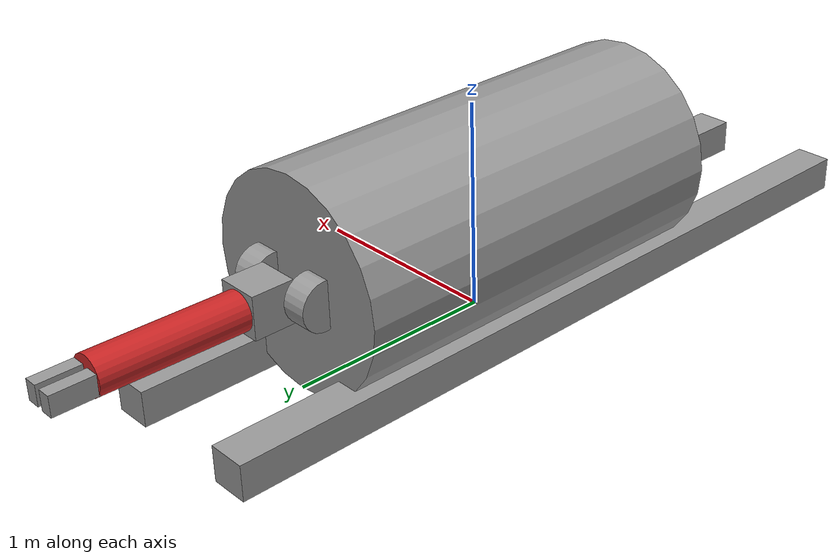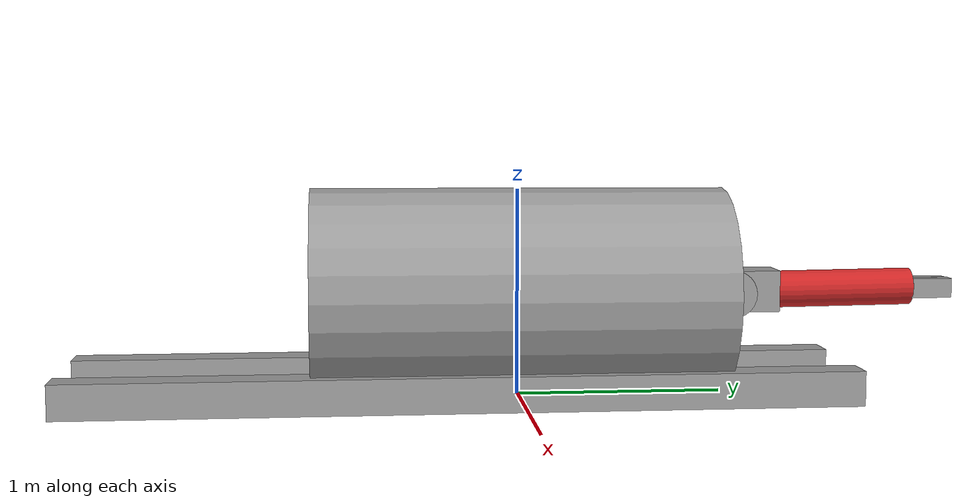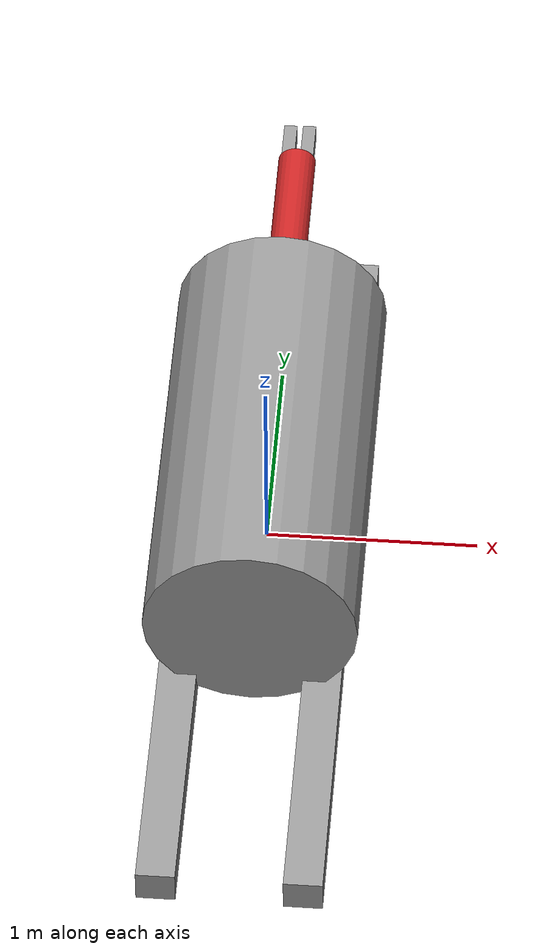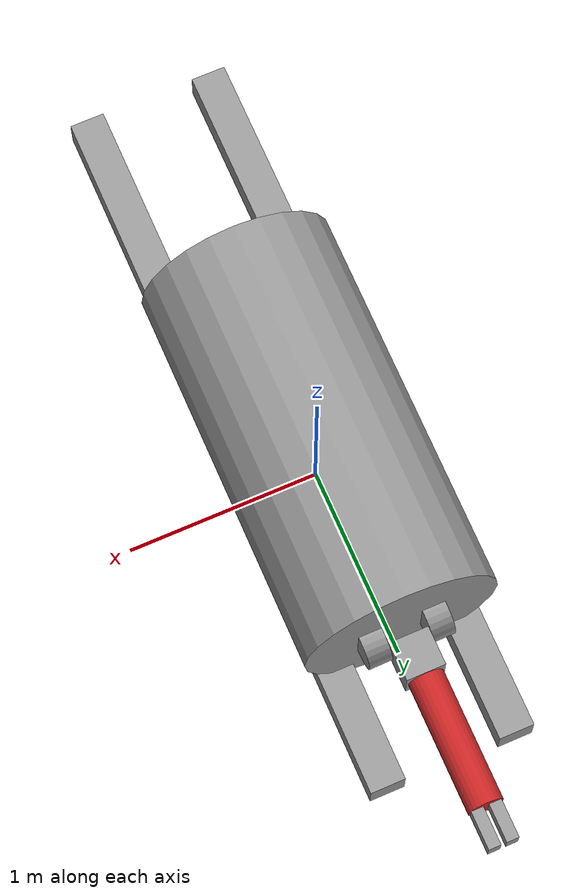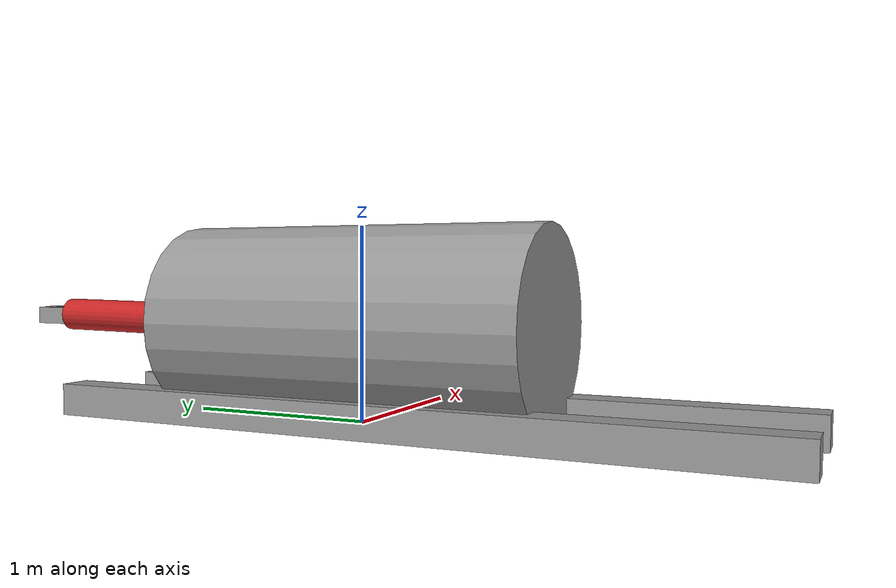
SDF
<?xml version='1.0'?>
<sdf version='1.7'>
  <model name='auv'>
    <link name='link_0'>
      <inertial>
        <mass>1</mass>
        <inertia>
          <ixx>0.395833</ixx>
          <ixy>0</ixy>
          <ixz>0</ixz>
          <iyy>0.395833</iyy>
          <iyz>0</iyz>
          <izz>0.125</izz>
        </inertia>
        <pose>0 0 0 0 -0 0</pose>
      </inertial>
      <pose>0 0.001745 0.506209 1.56735 -0 0</pose>
      <gravity>1</gravity>
      <self_collide>0</self_collide>
      <kinematic>0</kinematic>
      <enable_wind>0</enable_wind>
      <visual name='visual'>
        <pose>0 0 0 0 -0 0</pose>
        <geometry>
          <cylinder>
            <radius>0.5</radius>
            <length>2</length>
          </cylinder>
        </geometry>
        <material>
          <lighting>1</lighting>
          <script>
            <uri>file://media/materials/scripts/gazebo.material</uri>
            <name>Gazebo/Grey</name>
          </script>
          <shader type='pixel'>
            <normal_map>__default__</normal_map>
          </shader>
          <ambient>0.3 0.3 0.3 1</ambient>
          <diffuse>0.7 0.7 0.7 1</diffuse>
          <specular>0.01 0.01 0.01 1</specular>
          <emissive>0 0 0 1</emissive>
        </material>
        <transparency>0</transparency>
        <cast_shadows>1</cast_shadows>
      </visual>
      <collision name='collision'>
        <laser_retro>0</laser_retro>
        <max_contacts>10</max_contacts>
        <pose>0 0 0 0 -0 0</pose>
        <geometry>
          <cylinder>
            <radius>0.5</radius>
            <length>2</length>
          </cylinder>
        </geometry>
        <surface>
          <friction>
            <ode>
              <mu>1</mu>
              <mu2>1</mu2>
              <fdir1>0 0 0</fdir1>
              <slip1>0</slip1>
              <slip2>0</slip2>
            </ode>
            <torsional>
              <coefficient>1</coefficient>
              <patch_radius>0</patch_radius>
              <surface_radius>0</surface_radius>
              <use_patch_radius>1</use_patch_radius>
              <ode>
                <slip>0</slip>
              </ode>
            </torsional>
          </friction>
          <bounce>
            <restitution_coefficient>0</restitution_coefficient>
            <threshold>1e+06</threshold>
          </bounce>
          <contact>
            <collide_without_contact>0</collide_without_contact>
            <collide_without_contact_bitmask>1</collide_without_contact_bitmask>
            <collide_bitmask>1</collide_bitmask>
            <ode>
              <soft_cfm>0</soft_cfm>
              <soft_erp>0.2</soft_erp>
              <kp>1e+13</kp>
              <kd>1</kd>
              <max_vel>0.01</max_vel>
              <min_depth>0</min_depth>
            </ode>
            <bullet>
              <split_impulse>1</split_impulse>
              <split_impulse_penetration_threshold>-0.01</split_impulse_penetration_threshold>
              <soft_cfm>0</soft_cfm>
              <soft_erp>0.2</soft_erp>
              <kp>1e+13</kp>
              <kd>1</kd>
            </bullet>
          </contact>
        </surface>
      </collision>
    </link>
    <link name='link_0_0'>
      <inertial>
        <mass>0.115855</mass>
        <inertia>
          <ixx>0.139658</ixx>
          <ixy>0</ixy>
          <ixz>0</ixz>
          <iyy>0.000590181</iyy>
          <iyz>0</iyz>
          <izz>0.139699</izz>
        </inertia>
        <pose>0 0 0 0 -0 0</pose>
      </inertial>
      <pose>-0.342509 -0.280287 0.069225 0 -0 0</pose>
      <visual name='visual'>
        <pose>0 0 0 0 -0 0</pose>
        <geometry>
          <box>
            <size>0.180774 3.79961 0.168672</size>
          </box>
        </geometry>
        <material>
          <lighting>1</lighting>
          <script>
            <uri>file://media/materials/scripts/gazebo.material</uri>
            <name>Gazebo/Grey</name>
          </script>
          <shader type='pixel'/>
        </material>
        <transparency>0</transparency>
        <cast_shadows>1</cast_shadows>
      </visual>
      <collision name='collision'>
        <laser_retro>0</laser_retro>
        <max_contacts>10</max_contacts>
        <pose>0 0 0 0 -0 0</pose>
        <geometry>
          <box>
            <size>0.180774 3.79961 0.168672</size>
          </box>
        </geometry>
        <surface>
          <friction>
            <ode>
              <mu>1</mu>
              <mu2>1</mu2>
              <fdir1>0 0 0</fdir1>
              <slip1>0</slip1>
              <slip2>0</slip2>
            </ode>
            <torsional>
              <coefficient>1</coefficient>
              <patch_radius>0</patch_radius>
              <surface_radius>0</surface_radius>
              <use_patch_radius>1</use_patch_radius>
              <ode>
                <slip>0</slip>
              </ode>
            </torsional>
          </friction>
          <bounce>
            <restitution_coefficient>0</restitution_coefficient>
            <threshold>1e+06</threshold>
          </bounce>
          <contact>
            <collide_without_contact>0</collide_without_contact>
            <collide_without_contact_bitmask>1</collide_without_contact_bitmask>
            <collide_bitmask>1</collide_bitmask>
            <ode>
              <soft_cfm>0</soft_cfm>
              <soft_erp>0.2</soft_erp>
              <kp>1e+13</kp>
              <kd>1</kd>
              <max_vel>0.01</max_vel>
              <min_depth>0</min_depth>
            </ode>
            <bullet>
              <split_impulse>1</split_impulse>
              <split_impulse_penetration_threshold>-0.01</split_impulse_penetration_threshold>
              <soft_cfm>0</soft_cfm>
              <soft_erp>0.2</soft_erp>
              <kp>1e+13</kp>
              <kd>1</kd>
            </bullet>
          </contact>
        </surface>
      </collision>
    </link>
    <link name='link_0_0_clone'>
      <inertial>
        <mass>0.115855</mass>
        <inertia>
          <ixx>0.139658</ixx>
          <ixy>0</ixy>
          <ixz>0</ixz>
          <iyy>0.000590181</iyy>
          <iyz>0</iyz>
          <izz>0.139699</izz>
        </inertia>
        <pose>0 0 0 0 -0 0</pose>
      </inertial>
      <pose>0.332258 -0.28334 0.069225 0 -0 0</pose>
      <visual name='visual_0'>
        <pose>0 0 0 0 -0 0</pose>
        <geometry>
          <box>
            <size>0.180774 3.79961 0.168672</size>
          </box>
        </geometry>
        <material>
          <lighting>1</lighting>
          <script>
            <uri>file://media/materials/scripts/gazebo.material</uri>
            <name>Gazebo/Grey</name>
          </script>
          <shader type='pixel'/>
        </material>
        <transparency>0</transparency>
        <cast_shadows>1</cast_shadows>
      </visual>
      <collision name='collision'>
        <laser_retro>0</laser_retro>
        <max_contacts>10</max_contacts>
        <pose>0 0 0 0 -0 0</pose>
        <geometry>
          <box>
            <size>0.180774 3.79961 0.168672</size>
          </box>
        </geometry>
        <surface>
          <friction>
            <ode>
              <mu>1</mu>
              <mu2>1</mu2>
              <fdir1>0 0 0</fdir1>
              <slip1>0</slip1>
              <slip2>0</slip2>
            </ode>
            <torsional>
              <coefficient>1</coefficient>
              <patch_radius>0</patch_radius>
              <surface_radius>0</surface_radius>
              <use_patch_radius>1</use_patch_radius>
              <ode>
                <slip>0</slip>
              </ode>
            </torsional>
          </friction>
          <bounce>
            <restitution_coefficient>0</restitution_coefficient>
            <threshold>1e+06</threshold>
          </bounce>
          <contact>
            <collide_without_contact>0</collide_without_contact>
            <collide_without_contact_bitmask>1</collide_without_contact_bitmask>
            <collide_bitmask>1</collide_bitmask>
            <ode>
              <soft_cfm>0</soft_cfm>
              <soft_erp>0.2</soft_erp>
              <kp>1e+13</kp>
              <kd>1</kd>
              <max_vel>0.01</max_vel>
              <min_depth>0</min_depth>
            </ode>
            <bullet>
              <split_impulse>1</split_impulse>
              <split_impulse_penetration_threshold>-0.01</split_impulse_penetration_threshold>
              <soft_cfm>0</soft_cfm>
              <soft_erp>0.2</soft_erp>
              <kp>1e+13</kp>
              <kd>1</kd>
            </bullet>
          </contact>
        </surface>
      </collision>
    </link>
    <link name='link_1'>
      <inertial>
        <mass>1</mass>
        <inertia>
          <ixx>0.166667</ixx>
          <ixy>0</ixy>
          <ixz>0</ixz>
          <iyy>0.166667</iyy>
          <iyz>0</iyz>
          <izz>0.166667</izz>
        </inertia>
        <pose>0 0 0 0 -0 0</pose>
      </inertial>
      <pose>0 1.17833 0.5 0 -0 0</pose>
      <gravity>1</gravity>
      <self_collide>0</self_collide>
      <kinematic>0</kinematic>
      <enable_wind>0</enable_wind>
      <visual name='visual'>
        <pose>0 0 0 0 -0 0</pose>
        <geometry>
          <box>
            <size>0.2 0.2 0.2</size>
          </box>
        </geometry>
        <material>
          <lighting>1</lighting>
          <script>
            <uri>file://media/materials/scripts/gazebo.material</uri>
            <name>Gazebo/Grey</name>
          </script>
          <shader type='pixel'>
            <normal_map>__default__</normal_map>
          </shader>
          <ambient>0.3 0.3 0.3 1</ambient>
          <diffuse>0.7 0.7 0.7 1</diffuse>
          <specular>0.01 0.01 0.01 1</specular>
          <emissive>0 0 0 1</emissive>
        </material>
        <transparency>0</transparency>
        <cast_shadows>1</cast_shadows>
      </visual>
      <collision name='collision'>
        <laser_retro>0</laser_retro>
        <max_contacts>10</max_contacts>
        <pose>0 0 0 0 -0 0</pose>
        <geometry>
          <box>
            <size>0.2 0.2 0.2</size>
          </box>
        </geometry>
        <surface>
          <friction>
            <ode>
              <mu>1</mu>
              <mu2>1</mu2>
              <fdir1>0 0 0</fdir1>
              <slip1>0</slip1>
              <slip2>0</slip2>
            </ode>
            <torsional>
              <coefficient>1</coefficient>
              <patch_radius>0</patch_radius>
              <surface_radius>0</surface_radius>
              <use_patch_radius>1</use_patch_radius>
              <ode>
                <slip>0</slip>
              </ode>
            </torsional>
          </friction>
          <bounce>
            <restitution_coefficient>0</restitution_coefficient>
            <threshold>1e+06</threshold>
          </bounce>
          <contact>
            <collide_without_contact>0</collide_without_contact>
            <collide_without_contact_bitmask>1</collide_without_contact_bitmask>
            <collide_bitmask>1</collide_bitmask>
            <ode>
              <soft_cfm>0</soft_cfm>
              <soft_erp>0.2</soft_erp>
              <kp>1e+13</kp>
              <kd>1</kd>
              <max_vel>0.01</max_vel>
              <min_depth>0</min_depth>
            </ode>
            <bullet>
              <split_impulse>1</split_impulse>
              <split_impulse_penetration_threshold>-0.01</split_impulse_penetration_threshold>
              <soft_cfm>0</soft_cfm>
              <soft_erp>0.2</soft_erp>
              <kp>1e+13</kp>
              <kd>1</kd>
            </bullet>
          </contact>
        </surface>
      </collision>
    </link>
    <link name='link_1_clone'>
      <inertial>
        <mass>0.144723</mass>
        <inertia>
          <ixx>0.000590822</ixx>
          <ixy>0</ixy>
          <ixz>0</ixz>
          <iyy>0.000156325</iyy>
          <iyz>0</iyz>
          <izz>0.000530321</izz>
        </inertia>
        <pose>0 0 0 0 -0 0</pose>
      </inertial>
      <pose>-0.046287 2.04959 0.501162 0 -0 0</pose>
      <gravity>1</gravity>
      <self_collide>0</self_collide>
      <kinematic>0</kinematic>
      <enable_wind>0</enable_wind>
      <visual name='visual'>
        <pose>0 0 0 0 -0 0</pose>
        <geometry>
          <box>
            <size>0.063029 0.2 0.094812</size>
          </box>
        </geometry>
        <material>
          <lighting>1</lighting>
          <script>
            <uri>file://media/materials/scripts/gazebo.material</uri>
            <name>Gazebo/Grey</name>
          </script>
          <shader type='pixel'>
            <normal_map>__default__</normal_map>
          </shader>
          <ambient>0.3 0.3 0.3 1</ambient>
          <diffuse>0.7 0.7 0.7 1</diffuse>
          <specular>0.01 0.01 0.01 1</specular>
          <emissive>0 0 0 1</emissive>
        </material>
        <transparency>0</transparency>
        <cast_shadows>1</cast_shadows>
      </visual>
      <collision name='collision'>
        <laser_retro>0</laser_retro>
        <max_contacts>10</max_contacts>
        <pose>0 0 0 0 -0 0</pose>
        <geometry>
          <box>
            <size>0.063029 0.2 0.094812</size>
          </box>
        </geometry>
        <surface>
          <friction>
            <ode>
              <mu>1</mu>
              <mu2>1</mu2>
              <fdir1>0 0 0</fdir1>
              <slip1>0</slip1>
              <slip2>0</slip2>
            </ode>
            <torsional>
              <coefficient>1</coefficient>
              <patch_radius>0</patch_radius>
              <surface_radius>0</surface_radius>
              <use_patch_radius>1</use_patch_radius>
              <ode>
                <slip>0</slip>
              </ode>
            </torsional>
          </friction>
          <bounce>
            <restitution_coefficient>0</restitution_coefficient>
            <threshold>1e+06</threshold>
          </bounce>
          <contact>
            <collide_without_contact>0</collide_without_contact>
            <collide_without_contact_bitmask>1</collide_without_contact_bitmask>
            <collide_bitmask>1</collide_bitmask>
            <ode>
              <soft_cfm>0</soft_cfm>
              <soft_erp>0.2</soft_erp>
              <kp>1e+13</kp>
              <kd>1</kd>
              <max_vel>0.01</max_vel>
              <min_depth>0</min_depth>
            </ode>
            <bullet>
              <split_impulse>1</split_impulse>
              <split_impulse_penetration_threshold>-0.01</split_impulse_penetration_threshold>
              <soft_cfm>0</soft_cfm>
              <soft_erp>0.2</soft_erp>
              <kp>1e+13</kp>
              <kd>1</kd>
            </bullet>
          </contact>
        </surface>
      </collision>
    </link>
    <link name='link_1_clone_clone_1'>
      <inertial>
        <mass>0.144723</mass>
        <inertia>
          <ixx>0.000590822</ixx>
          <ixy>0</ixy>
          <ixz>0</ixz>
          <iyy>0.000156325</iyy>
          <iyz>0</iyz>
          <izz>0.000530321</izz>
        </inertia>
        <pose>0 0 0 0 -0 0</pose>
      </inertial>
      <pose>0.045486 2.04946 0.504095 0 -0 0</pose>
      <gravity>1</gravity>
      <self_collide>0</self_collide>
      <kinematic>0</kinematic>
      <enable_wind>0</enable_wind>
      <visual name='visual'>
        <pose>0 0 0 0 -0 0</pose>
        <geometry>
          <box>
            <size>0.063029 0.2 0.094812</size>
          </box>
        </geometry>
        <material>
          <lighting>1</lighting>
          <script>
            <uri>file://media/materials/scripts/gazebo.material</uri>
            <name>Gazebo/Grey</name>
          </script>
          <shader type='pixel'>
            <normal_map>__default__</normal_map>
          </shader>
          <ambient>0.3 0.3 0.3 1</ambient>
          <diffuse>0.7 0.7 0.7 1</diffuse>
          <specular>0.01 0.01 0.01 1</specular>
          <emissive>0 0 0 1</emissive>
        </material>
        <transparency>0</transparency>
        <cast_shadows>1</cast_shadows>
      </visual>
      <collision name='collision'>
        <laser_retro>0</laser_retro>
        <max_contacts>10</max_contacts>
        <pose>0 0 0 0 -0 0</pose>
        <geometry>
          <box>
            <size>0.063029 0.2 0.094812</size>
          </box>
        </geometry>
        <surface>
          <friction>
            <ode>
              <mu>1</mu>
              <mu2>1</mu2>
              <fdir1>0 0 0</fdir1>
              <slip1>0</slip1>
              <slip2>0</slip2>
            </ode>
            <torsional>
              <coefficient>1</coefficient>
              <patch_radius>0</patch_radius>
              <surface_radius>0</surface_radius>
              <use_patch_radius>1</use_patch_radius>
              <ode>
                <slip>0</slip>
              </ode>
            </torsional>
          </friction>
          <bounce>
            <restitution_coefficient>0</restitution_coefficient>
            <threshold>1e+06</threshold>
          </bounce>
          <contact>
            <collide_without_contact>0</collide_without_contact>
            <collide_without_contact_bitmask>1</collide_without_contact_bitmask>
            <collide_bitmask>1</collide_bitmask>
            <ode>
              <soft_cfm>0</soft_cfm>
              <soft_erp>0.2</soft_erp>
              <kp>1e+13</kp>
              <kd>1</kd>
              <max_vel>0.01</max_vel>
              <min_depth>0</min_depth>
            </ode>
            <bullet>
              <split_impulse>1</split_impulse>
              <split_impulse_penetration_threshold>-0.01</split_impulse_penetration_threshold>
              <soft_cfm>0</soft_cfm>
              <soft_erp>0.2</soft_erp>
              <kp>1e+13</kp>
              <kd>1</kd>
            </bullet>
          </contact>
        </surface>
      </collision>
    </link>
    <link name='link_2'>
      <inertial>
        <mass>0.00623059</mass>
        <inertia>
          <ixx>2.777e-05</ixx>
          <ixy>0</ixy>
          <ixz>0</ixz>
          <iyy>2.777e-05</iyy>
          <iyz>0</iyz>
          <izz>4.09e-05</izz>
        </inertia>
        <pose>0 0 0 0 -0 0</pose>
      </inertial>
      <pose>0.165424 1.02048 0.501372 -1.57032 -0 1.5833</pose>
      <gravity>1</gravity>
      <self_collide>0</self_collide>
      <kinematic>0</kinematic>
      <enable_wind>0</enable_wind>
      <visual name='visual'>
        <pose>0 0 0 0 -0 0</pose>
        <geometry>
          <cylinder>
            <radius>0.114586</radius>
            <length>0.118696</length>
          </cylinder>
        </geometry>
        <material>
          <lighting>1</lighting>
          <script>
            <uri>file://media/materials/scripts/gazebo.material</uri>
            <name>Gazebo/Grey</name>
          </script>
          <shader type='pixel'>
            <normal_map>__default__</normal_map>
          </shader>
        </material>
        <transparency>0</transparency>
        <cast_shadows>1</cast_shadows>
      </visual>
      <collision name='collision'>
        <laser_retro>0</laser_retro>
        <max_contacts>10</max_contacts>
        <pose>0 0 0 0 -0 0</pose>
        <geometry>
          <cylinder>
            <radius>0.114586</radius>
            <length>0.118696</length>
          </cylinder>
        </geometry>
        <surface>
          <friction>
            <ode>
              <mu>1</mu>
              <mu2>1</mu2>
              <fdir1>0 0 0</fdir1>
              <slip1>0</slip1>
              <slip2>0</slip2>
            </ode>
            <torsional>
              <coefficient>1</coefficient>
              <patch_radius>0</patch_radius>
              <surface_radius>0</surface_radius>
              <use_patch_radius>1</use_patch_radius>
              <ode>
                <slip>0</slip>
              </ode>
            </torsional>
          </friction>
          <bounce>
            <restitution_coefficient>0</restitution_coefficient>
            <threshold>1e+06</threshold>
          </bounce>
          <contact>
            <collide_without_contact>0</collide_without_contact>
            <collide_without_contact_bitmask>1</collide_without_contact_bitmask>
            <collide_bitmask>1</collide_bitmask>
            <ode>
              <soft_cfm>0</soft_cfm>
              <soft_erp>0.2</soft_erp>
              <kp>1e+13</kp>
              <kd>1</kd>
              <max_vel>0.01</max_vel>
              <min_depth>0</min_depth>
            </ode>
            <bullet>
              <split_impulse>1</split_impulse>
              <split_impulse_penetration_threshold>-0.01</split_impulse_penetration_threshold>
              <soft_cfm>0</soft_cfm>
              <soft_erp>0.2</soft_erp>
              <kp>1e+13</kp>
              <kd>1</kd>
            </bullet>
          </contact>
        </surface>
      </collision>
    </link>
    <link name='link_2_clone'>
      <inertial>
        <mass>0.00623059</mass>
        <inertia>
          <ixx>2.777e-05</ixx>
          <ixy>0</ixy>
          <ixz>0</ixz>
          <iyy>2.777e-05</iyy>
          <iyz>0</iyz>
          <izz>4.09e-05</izz>
        </inertia>
        <pose>0 0 0 0 -0 0</pose>
      </inertial>
      <pose>-0.161747 1.01981 0.501364 -1.57032 -0 1.5833</pose>
      <gravity>1</gravity>
      <self_collide>0</self_collide>
      <kinematic>0</kinematic>
      <enable_wind>0</enable_wind>
      <visual name='visual'>
        <pose>0 0 0 0 -0 0</pose>
        <geometry>
          <cylinder>
            <radius>0.114586</radius>
            <length>0.118696</length>
          </cylinder>
        </geometry>
        <material>
          <lighting>1</lighting>
          <script>
            <uri>file://media/materials/scripts/gazebo.material</uri>
            <name>Gazebo/Grey</name>
          </script>
          <shader type='pixel'>
            <normal_map>__default__</normal_map>
          </shader>
        </material>
        <transparency>0</transparency>
        <cast_shadows>1</cast_shadows>
      </visual>
      <collision name='collision'>
        <laser_retro>0</laser_retro>
        <max_contacts>10</max_contacts>
        <pose>0 0 0 0 -0 0</pose>
        <geometry>
          <cylinder>
            <radius>0.114586</radius>
            <length>0.118696</length>
          </cylinder>
        </geometry>
        <surface>
          <friction>
            <ode>
              <mu>1</mu>
              <mu2>1</mu2>
              <fdir1>0 0 0</fdir1>
              <slip1>0</slip1>
              <slip2>0</slip2>
            </ode>
            <torsional>
              <coefficient>1</coefficient>
              <patch_radius>0</patch_radius>
              <surface_radius>0</surface_radius>
              <use_patch_radius>1</use_patch_radius>
              <ode>
                <slip>0</slip>
              </ode>
            </torsional>
          </friction>
          <bounce>
            <restitution_coefficient>0</restitution_coefficient>
            <threshold>1e+06</threshold>
          </bounce>
          <contact>
            <collide_without_contact>0</collide_without_contact>
            <collide_without_contact_bitmask>1</collide_without_contact_bitmask>
            <collide_bitmask>1</collide_bitmask>
            <ode>
              <soft_cfm>0</soft_cfm>
              <soft_erp>0.2</soft_erp>
              <kp>1e+13</kp>
              <kd>1</kd>
              <max_vel>0.01</max_vel>
              <min_depth>0</min_depth>
            </ode>
            <bullet>
              <split_impulse>1</split_impulse>
              <split_impulse_penetration_threshold>-0.01</split_impulse_penetration_threshold>
              <soft_cfm>0</soft_cfm>
              <soft_erp>0.2</soft_erp>
              <kp>1e+13</kp>
              <kd>1</kd>
            </bullet>
          </contact>
        </surface>
      </collision>
    </link>
    <link name='link_3'>
      <inertial>
        <mass>0.0227632</mass>
        <inertia>
          <ixx>0.00096526</ixx>
          <ixy>0</ixy>
          <ixz>0</ixz>
          <iyy>0.00096526</iyy>
          <iyz>0</iyz>
          <izz>9.31e-05</izz>
        </inertia>
        <pose>0 0 0 0 -0 0</pose>
      </inertial>
      <pose>-0.001439 1.60613 0.503514 -1.5586 0 0</pose>
      <self_collide>0</self_collide>
      <enable_wind>0</enable_wind>
      <kinematic>0</kinematic>
      <gravity>1</gravity>
      <visual name='visual'>
        <pose>0 0 0 0 -0 0</pose>
        <geometry>
          <cylinder>
            <radius>0.0904442</radius>
            <length>0.695926</length>
          </cylinder>
        </geometry>
        <material>
          <lighting>1</lighting>
          <script>
            <uri>file://media/materials/scripts/gazebo.material</uri>
            <name>Gazebo/Red</name>
          </script>
          <shader type='pixel'>
            <normal_map>__default__</normal_map>
          </shader>
          <ambient>0.3 0.3 0.3 1</ambient>
          <diffuse>0.7 0.7 0.7 1</diffuse>
          <specular>0.01 0.01 0.01 1</specular>
          <emissive>0 0 0 1</emissive>
        </material>
        <transparency>0</transparency>
        <cast_shadows>1</cast_shadows>
      </visual>
      <collision name='collision'>
        <laser_retro>0</laser_retro>
        <max_contacts>10</max_contacts>
        <pose>0 0 0 0 -0 0</pose>
        <geometry>
          <cylinder>
            <radius>0.090444</radius>
            <length>0.695926</length>
          </cylinder>
        </geometry>
        <surface>
          <friction>
            <ode>
              <mu>1</mu>
              <mu2>1</mu2>
              <fdir1>0 0 0</fdir1>
              <slip1>0</slip1>
              <slip2>0</slip2>
            </ode>
            <torsional>
              <coefficient>1</coefficient>
              <patch_radius>0</patch_radius>
              <surface_radius>0</surface_radius>
              <use_patch_radius>1</use_patch_radius>
              <ode>
                <slip>0</slip>
              </ode>
            </torsional>
          </friction>
          <bounce>
            <restitution_coefficient>0</restitution_coefficient>
            <threshold>1e+06</threshold>
          </bounce>
          <contact>
            <collide_without_contact>0</collide_without_contact>
            <collide_without_contact_bitmask>1</collide_without_contact_bitmask>
            <collide_bitmask>1</collide_bitmask>
            <ode>
              <soft_cfm>0</soft_cfm>
              <soft_erp>0.2</soft_erp>
              <kp>1e+13</kp>
              <kd>1</kd>
              <max_vel>0.01</max_vel>
              <min_depth>0</min_depth>
            </ode>
            <bullet>
              <split_impulse>1</split_impulse>
              <split_impulse_penetration_threshold>-0.01</split_impulse_penetration_threshold>
              <soft_cfm>0</soft_cfm>
              <soft_erp>0.2</soft_erp>
              <kp>1e+13</kp>
              <kd>1</kd>
            </bullet>
          </contact>
        </surface>
      </collision>
    </link>
    <static>1</static>
    <allow_auto_disable>1</allow_auto_disable>
  </model>
</sdf>
